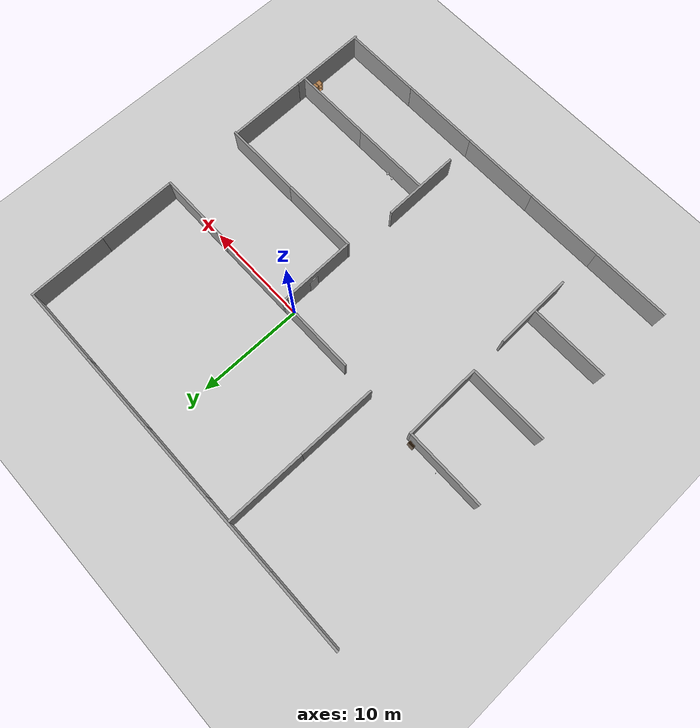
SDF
<sdf version="1.7">
 <world name="default">
  <model name="ground_plane">
   <static>1</static>
   <link name="link">
    <collision name="collision">
     <geometry><plane><normal>0 0 1</normal><size>100 100</size></plane></geometry>
     <surface><friction><ode><mu>100</mu><mu2>50</mu2></ode></friction></surface>
    </collision>
    <visual name="visual">
     <cast_shadows>0</cast_shadows>
     <geometry><plane><normal>0 0 1</normal><size>100 100</size></plane></geometry>
     <material>
      <script><uri>file://media/materials/scripts/gazebo.material</uri><name>Gazebo/Grey</name></script>
     </material>
    </visual>
   </link>
  </model>
  <model name="grey_wall_clone_4_clone">
   <static>1</static>
   <link name="link">
    <pose>0 0 1.4 0 -0 0</pose>
    <collision name="collision"><geometry><box><size>7.5 0.2 2.8</size></box></geometry></collision>
    <visual name="visual">
     <cast_shadows>0</cast_shadows>
     <geometry><box><size>7.5 0.2 2.8</size></box></geometry>
     <material>
      <script>
       <uri>model://grey_wall/materials/scripts</uri>
       <uri>model://grey_wall/materials/textures</uri>
       <name>vrc/grey_wall</name>
      </script>
     </material>
    </visual>
   </link>
   <pose>15.5082 4.30822 0 0 0 -1.5521</pose>
  </model>
  <model name="grey_wall_clone_4_clone_0">
   <static>1</static>
   <link name="link">
    <pose>0 0 1.4 0 -0 0</pose>
    <collision name="collision"><geometry><box><size>7.5 0.2 2.8</size></box></geometry></collision>
    <visual name="visual">
     <cast_shadows>0</cast_shadows>
     <geometry><box><size>7.5 0.2 2.8</size></box></geometry>
     <material>
      <script>
       <uri>model://grey_wall/materials/scripts</uri>
       <uri>model://grey_wall/materials/textures</uri>
       <name>vrc/grey_wall</name>
      </script>
     </material>
    </visual>
   </link>
   <pose>-14.449 -3.19415 0 0 0 -1.5521</pose>
  </model>
  <model name="grey_wall_clone_4_clone_0_clone_0">
   <static>1</static>
   <link name="link">
    <pose>0 0 1.4 0 -0 0</pose>
    <collision name="collision"><geometry><box><size>7.5 0.2 2.8</size></box></geometry></collision>
    <visual name="visual">
     <cast_shadows>0</cast_shadows>
     <geometry><box><size>7.5 0.2 2.8</size></box></geometry>
     <material>
      <script>
       <uri>model://grey_wall/materials/scripts</uri>
       <uri>model://grey_wall/materials/textures</uri>
       <name>vrc/grey_wall</name>
      </script>
     </material>
    </visual>
   </link>
   <pose>0.647385 -3.19007 0 0 0 -1.5521</pose>
  </model>
  <model name="grey_wall_clone_0">
   <static>1</static>
   <link name="link">
    <pose>0 0 1.4 0 -0 0</pose>
    <collision name="collision"><geometry><box><size>7.5 0.2 2.8</size></box></geometry></collision>
    <visual name="visual">
     <cast_shadows>0</cast_shadows>
     <geometry><box><size>7.5 0.2 2.8</size></box></geometry>
     <material>
      <script>
       <uri>model://grey_wall/materials/scripts</uri>
       <uri>model://grey_wall/materials/textures</uri>
       <name>vrc/grey_wall</name>
      </script>
     </material>
    </visual>
   </link>
   <pose>4.42551 0.460567 0 0 -0 0</pose>
  </model>
  <model name="grey_wall_clone_clone_0_clone">
   <static>1</static>
   <link name="link">
    <pose>0 0 1.4 0 -0 0</pose>
    <collision name="collision"><geometry><box><size>7.5 0.2 2.8</size></box></geometry></collision>
    <visual name="visual">
     <cast_shadows>0</cast_shadows>
     <geometry><box><size>7.5 0.2 2.8</size></box></geometry>
     <material>
      <script>
       <uri>model://grey_wall/materials/scripts</uri>
       <uri>model://grey_wall/materials/textures</uri>
       <name>vrc/grey_wall</name>
      </script>
     </material>
    </visual>
   </link>
   <pose>-18.3631 0.451252 0 0 -0 0</pose>
  </model>
  <model name="grey_wall_clone_clone_0_clone_0">
   <static>1</static>
   <link name="link">
    <pose>0 0 1.4 0 -0 0</pose>
    <collision name="collision"><geometry><box><size>7.5 0.2 2.8</size></box></geometry></collision>
    <visual name="visual">
     <cast_shadows>0</cast_shadows>
     <geometry><box><size>7.5 0.2 2.8</size></box></geometry>
     <material>
      <script>
       <uri>model://grey_wall/materials/scripts</uri>
       <uri>model://grey_wall/materials/textures</uri>
       <name>vrc/grey_wall</name>
      </script>
     </material>
    </visual>
   </link>
   <pose>11.9263 0.46112 0 0 -0 0</pose>
  </model>
  <model name="grey_wall_clone_clone_0_clone_1">
   <static>1</static>
   <link name="link">
    <pose>0 0 1.4 0 -0 0</pose>
    <collision name="collision"><geometry><box><size>7.5 0.2 2.8</size></box></geometry></collision>
    <visual name="visual">
     <cast_shadows>0</cast_shadows>
     <geometry><box><size>7.5 0.2 2.8</size></box></geometry>
     <material>
      <script>
       <uri>model://grey_wall/materials/scripts</uri>
       <uri>model://grey_wall/materials/textures</uri>
       <name>vrc/grey_wall</name>
      </script>
     </material>
    </visual>
   </link>
   <pose>-18.215 -6.85848 0 0 -0 0</pose>
  </model>
  <model name="grey_wall_clone_clone_0_clone_0_clone">
   <static>1</static>
   <link name="link">
    <pose>0 0 1.4 0 -0 0</pose>
    <collision name="collision"><geometry><box><size>7.5 0.2 2.8</size></box></geometry></collision>
    <visual name="visual">
     <cast_shadows>0</cast_shadows>
     <geometry><box><size>7.5 0.2 2.8</size></box></geometry>
     <material>
      <script>
       <uri>model://grey_wall/materials/scripts</uri>
       <uri>model://grey_wall/materials/textures</uri>
       <name>vrc/grey_wall</name>
      </script>
     </material>
    </visual>
   </link>
   <pose>4.35977 -7.00596 0 0 -0 0</pose>
  </model>
  <model name="grey_wall_clone_clone_0_clone_0_clone_0">
   <static>1</static>
   <link name="link">
    <pose>0 0 1.4 0 -0 0</pose>
    <collision name="collision"><geometry><box><size>7.5 0.2 2.8</size></box></geometry></collision>
    <visual name="visual">
     <cast_shadows>0</cast_shadows>
     <geometry><box><size>7.5 0.2 2.8</size></box></geometry>
     <material>
      <script>
       <uri>model://grey_wall/materials/scripts</uri>
       <uri>model://grey_wall/materials/textures</uri>
       <name>vrc/grey_wall</name>
      </script>
     </material>
    </visual>
   </link>
   <pose>11.8582 -7.00493 0 0 -0 0</pose>
  </model>
  <model name="grey_wall_clone_clone_0_clone_2">
   <static>1</static>
   <link name="link">
    <pose>0 0 1.4 0 -0 0</pose>
    <collision name="collision"><geometry><box><size>7.5 0.2 2.8</size></box></geometry></collision>
    <visual name="visual">
     <cast_shadows>0</cast_shadows>
     <geometry><box><size>7.5 0.2 2.8</size></box></geometry>
     <material>
      <script>
       <uri>model://grey_wall/materials/scripts</uri>
       <uri>model://grey_wall/materials/textures</uri>
       <name>vrc/grey_wall</name>
      </script>
     </material>
    </visual>
   </link>
   <pose>-18.5394 15.4379 0 0 -0 0</pose>
  </model>
  <model name="grey_wall_clone_clone_0_clone_3">
   <static>1</static>
   <link name="link">
    <pose>0 0 1.4 0 -0 0</pose>
    <collision name="collision"><geometry><box><size>7.5 0.2 2.8</size></box></geometry></collision>
    <visual name="visual">
     <cast_shadows>0</cast_shadows>
     <geometry><box><size>7.5 0.2 2.8</size></box></geometry>
     <material>
      <script>
       <uri>model://grey_wall/materials/scripts</uri>
       <uri>model://grey_wall/materials/textures</uri>
       <name>vrc/grey_wall</name>
      </script>
     </material>
    </visual>
   </link>
   <pose>-11.0493 15.4397 0 0 -0 0</pose>
  </model>
  <model name="grey_wall_clone_clone_0_clone_4">
   <static>1</static>
   <link name="link">
    <pose>0 0 1.4 0 -0 0</pose>
    <collision name="collision"><geometry><box><size>7.5 0.2 2.8</size></box></geometry></collision>
    <visual name="visual">
     <cast_shadows>0</cast_shadows>
     <geometry><box><size>7.5 0.2 2.8</size></box></geometry>
     <material>
      <script>
       <uri>model://grey_wall/materials/scripts</uri>
       <uri>model://grey_wall/materials/textures</uri>
       <name>vrc/grey_wall</name>
      </script>
     </material>
    </visual>
   </link>
   <pose>-3.54868 15.4378 0 0 -0 0</pose>
  </model>
  <model name="grey_wall_clone_clone_0_clone_5">
   <static>1</static>
   <link name="link">
    <pose>0 0 1.4 0 -0 0</pose>
    <collision name="collision"><geometry><box><size>7.5 0.2 2.8</size></box></geometry></collision>
    <visual name="visual">
     <cast_shadows>0</cast_shadows>
     <geometry><box><size>7.5 0.2 2.8</size></box></geometry>
     <material>
      <script>
       <uri>model://grey_wall/materials/scripts</uri>
       <uri>model://grey_wall/materials/textures</uri>
       <name>vrc/grey_wall</name>
      </script>
     </material>
    </visual>
   </link>
   <pose>3.95078 15.4377 0 0 -0 0</pose>
  </model>
  <model name="grey_wall_clone_clone_0_clone_6">
   <static>1</static>
   <link name="link">
    <pose>0 0 1.4 0 -0 0</pose>
    <collision name="collision"><geometry><box><size>7.5 0.2 2.8</size></box></geometry></collision>
    <visual name="visual">
     <cast_shadows>0</cast_shadows>
     <geometry><box><size>7.5 0.2 2.8</size></box></geometry>
     <material>
      <script>
       <uri>model://grey_wall/materials/scripts</uri>
       <uri>model://grey_wall/materials/textures</uri>
       <name>vrc/grey_wall</name>
      </script>
     </material>
    </visual>
   </link>
   <pose>11.452 15.4377 0 0 -0 0</pose>
  </model>
  <model name="grey_wall_clone_4_clone_clone">
   <static>1</static>
   <link name="link">
    <pose>0 0 1.4 0 -0 0</pose>
    <collision name="collision"><geometry><box><size>7.5 0.2 2.8</size></box></geometry></collision>
    <visual name="visual">
     <cast_shadows>0</cast_shadows>
     <geometry><box><size>7.5 0.2 2.8</size></box></geometry>
     <material>
      <script>
       <uri>model://grey_wall/materials/scripts</uri>
       <uri>model://grey_wall/materials/textures</uri>
       <name>vrc/grey_wall</name>
      </script>
     </material>
    </visual>
   </link>
   <pose>15.3664 11.7883 0 0 0 -1.5521</pose>
  </model>
  <model name="grey_wall_clone_4_clone_0_clone_0_clone">
   <static>1</static>
   <link name="link">
    <pose>0 0 1.4 0 -0 0</pose>
    <collision name="collision"><geometry><box><size>7.5 0.2 2.8</size></box></geometry></collision>
    <visual name="visual">
     <cast_shadows>0</cast_shadows>
     <geometry><box><size>7.5 0.2 2.8</size></box></geometry>
     <material>
      <script>
       <uri>model://grey_wall/materials/scripts</uri>
       <uri>model://grey_wall/materials/textures</uri>
       <name>vrc/grey_wall</name>
      </script>
     </material>
    </visual>
   </link>
   <pose>15.4873 -10.8414 0 0 0 -1.5521</pose>
  </model>
  <model name="grey_wall_clone_4_clone_0_clone_0_clone_0">
   <static>1</static>
   <link name="link">
    <pose>0 0 1.4 0 -0 0</pose>
    <collision name="collision"><geometry><box><size>7.5 0.2 2.8</size></box></geometry></collision>
    <visual name="visual">
     <cast_shadows>0</cast_shadows>
     <geometry><box><size>7.5 0.2 2.8</size></box></geometry>
     <material>
      <script>
       <uri>model://grey_wall/materials/scripts</uri>
       <uri>model://grey_wall/materials/textures</uri>
       <name>vrc/grey_wall</name>
      </script>
     </material>
    </visual>
   </link>
   <pose>15.6252 -18.2818 0 0 0 -1.5521</pose>
  </model>
  <model name="grey_wall_clone_clone_0_clone_0_clone_clone">
   <static>1</static>
   <link name="link">
    <pose>0 0 1.4 0 -0 0</pose>
    <collision name="collision"><geometry><box><size>7.5 0.2 2.8</size></box></geometry></collision>
    <visual name="visual">
     <cast_shadows>0</cast_shadows>
     <geometry><box><size>7.5 0.2 2.8</size></box></geometry>
     <material>
      <script>
       <uri>model://grey_wall/materials/scripts</uri>
       <uri>model://grey_wall/materials/textures</uri>
       <name>vrc/grey_wall</name>
      </script>
     </material>
    </visual>
   </link>
   <pose>-18.1396 -21.8252 0 0 -0 0</pose>
  </model>
  <model name="grey_wall_clone_clone_0_clone_0_clone_clone_0">
   <static>1</static>
   <link name="link">
    <pose>0 0 1.4 0 -0 0</pose>
    <collision name="collision"><geometry><box><size>7.5 0.2 2.8</size></box></geometry></collision>
    <visual name="visual">
     <cast_shadows>0</cast_shadows>
     <geometry><box><size>7.5 0.2 2.8</size></box></geometry>
     <material>
      <script>
       <uri>model://grey_wall/materials/scripts</uri>
       <uri>model://grey_wall/materials/textures</uri>
       <name>vrc/grey_wall</name>
      </script>
     </material>
    </visual>
   </link>
   <pose>-10.6534 -21.8234 0 0 -0 0</pose>
  </model>
  <model name="grey_wall_clone_clone_0_clone_0_clone_clone_1">
   <static>1</static>
   <link name="link">
    <pose>0 0 1.4 0 -0 0</pose>
    <collision name="collision"><geometry><box><size>7.5 0.2 2.8</size></box></geometry></collision>
    <visual name="visual">
     <cast_shadows>0</cast_shadows>
     <geometry><box><size>7.5 0.2 2.8</size></box></geometry>
     <material>
      <script>
       <uri>model://grey_wall/materials/scripts</uri>
       <uri>model://grey_wall/materials/textures</uri>
       <name>vrc/grey_wall</name>
      </script>
     </material>
    </visual>
   </link>
   <pose>-3.16614 -21.8218 0 0 -0 0</pose>
  </model>
  <model name="grey_wall_clone_clone_0_clone_0_clone_clone_2">
   <static>1</static>
   <link name="link">
    <pose>0 0 1.4 0 -0 0</pose>
    <collision name="collision"><geometry><box><size>7.5 0.2 2.8</size></box></geometry></collision>
    <visual name="visual">
     <cast_shadows>0</cast_shadows>
     <geometry><box><size>7.5 0.2 2.8</size></box></geometry>
     <material>
      <script>
       <uri>model://grey_wall/materials/scripts</uri>
       <uri>model://grey_wall/materials/textures</uri>
       <name>vrc/grey_wall</name>
      </script>
     </material>
    </visual>
   </link>
   <pose>4.33462 -21.8217 0 0 -0 0</pose>
  </model>
  <model name="grey_wall_clone_clone_0_clone_0_clone_clone_3">
   <static>1</static>
   <link name="link">
    <pose>0 0 1.4 0 -0 0</pose>
    <collision name="collision"><geometry><box><size>7.5 0.2 2.8</size></box></geometry></collision>
    <visual name="visual">
     <cast_shadows>0</cast_shadows>
     <geometry><box><size>7.5 0.2 2.8</size></box></geometry>
     <material>
      <script>
       <uri>model://grey_wall/materials/scripts</uri>
       <uri>model://grey_wall/materials/textures</uri>
       <name>vrc/grey_wall</name>
      </script>
     </material>
    </visual>
   </link>
   <pose>11.8265 -21.8133 0 0 -0 0</pose>
  </model>
  <model name="door">
   <link name="link_0">
    <visual name="visual">
     <pose>0 0 1 0 -0 0</pose>
     <geometry><box><size>0.9 0.15 2</size></box></geometry>
     <material>
      <script>
       <uri>model://door/materials/scripts</uri>
       <uri>model://door/materials/textures</uri>
       <name>door</name>
      </script>
     </material>
    </visual>
    <collision name="collision">
     <pose>0 0 1 0 -0 0</pose>
     <geometry><box><size>0.9 0.15 2</size></box></geometry>
    </collision>
   </link>
   <static>1</static>
   <pose>0.558432 -2.83222 0 0 0 -1.54638</pose>
  </model>
  <model name="cabinet">
   <static>1</static>
   <link name="cabinet_bottom_plate">
    <inertial>
     <pose>0 0 -1 0 -0 0</pose>
     <inertia><ixx>2.05</ixx><ixy>0</ixy><ixz>0</ixz><iyy>2.05</iyy><iyz>0</iyz><izz>2.05</izz></inertia>
     <mass>25</mass>
    </inertial>
    <collision name="cabinet_bottom_plate_geom">
     <pose>0 0 0.01 0 -0 0</pose>
     <geometry><box><size>0.45 0.45 0.02</size></box></geometry>
    </collision>
    <visual name="cabinet_bottom_plate_geom_visual">
     <pose>0 0 0.01 0 -0 0</pose>
     <geometry><box><size>0.45 0.45 0.02</size></box></geometry>
     <material>
      <script><uri>file://media/materials/scripts/gazebo.material</uri><name>Gazebo/Wood</name></script>
     </material>
    </visual>
    <collision name="cabinet_bottom_plate_geom_cabinet_back_plate">
     <pose>0.235 0 0.51 0 -0 0</pose>
     <geometry><box><size>0.02 0.45 1.02</size></box></geometry>
    </collision>
    <visual name="cabinet_bottom_plate_geom_cabinet_back_plate_visual">
     <pose>0.235 0 0.51 0 -0 0</pose>
     <geometry><box><size>0.02 0.45 1.02</size></box></geometry>
     <material>
      <script><uri>file://media/materials/scripts/gazebo.material</uri><name>Gazebo/Wood</name></script>
     </material>
    </visual>
    <collision name="cabinet_bottom_plate_geom_cabinet_left_plate">
     <pose>0 0.235 0.51 0 -0 0</pose>
     <geometry><box><size>0.45 0.02 1.02</size></box></geometry>
    </collision>
    <visual name="cabinet_bottom_plate_geom_cabinet_left_plate_visual">
     <pose>0 0.235 0.51 0 -0 0</pose>
     <geometry><box><size>0.45 0.02 1.02</size></box></geometry>
     <material>
      <script><uri>file://media/materials/scripts/gazebo.material</uri><name>Gazebo/Wood</name></script>
     </material>
    </visual>
    <collision name="cabinet_bottom_plate_geom_cabinet_middle_plate">
     <pose>0 0 0.51 0 -0 0</pose>
     <geometry><box><size>0.45 0.45 0.02</size></box></geometry>
    </collision>
    <visual name="cabinet_bottom_plate_geom_cabinet_middle_plate_visual">
     <pose>0 0 0.51 0 -0 0</pose>
     <geometry><box><size>0.45 0.45 0.02</size></box></geometry>
     <material>
      <script><uri>file://media/materials/scripts/gazebo.material</uri><name>Gazebo/Wood</name></script>
     </material>
    </visual>
    <collision name="cabinet_bottom_plate_geom_cabinet_right_plate">
     <pose>0 -0.235 0.51 0 -0 0</pose>
     <geometry><box><size>0.45 0.02 1.02</size></box></geometry>
    </collision>
    <visual name="cabinet_bottom_plate_geom_cabinet_right_plate_visual">
     <pose>0 -0.235 0.51 0 -0 0</pose>
     <geometry><box><size>0.45 0.02 1.02</size></box></geometry>
     <material>
      <script><uri>file://media/materials/scripts/gazebo.material</uri><name>Gazebo/Wood</name></script>
     </material>
    </visual>
    <collision name="cabinet_bottom_plate_geom_cabinet_top_plate">
     <pose>0 0 1.01 0 -0 0</pose>
     <geometry><box><size>0.45 0.45 0.02</size></box></geometry>
    </collision>
    <visual name="cabinet_bottom_plate_geom_cabinet_top_plate_visual">
     <pose>0 0 1.01 0 -0 0</pose>
     <geometry><box><size>0.45 0.45 0.02</size></box></geometry>
     <material>
      <script><uri>file://media/materials/scripts/gazebo.material</uri><name>Gazebo/Wood</name></script>
     </material>
    </visual>
   </link>
   <pose>15.2039 -16.2791 0 0 -0 0</pose>
  </model>
  <model name="cabinet_clone">
   <static>1</static>
   <link name="cabinet_bottom_plate">
    <inertial>
     <pose>0 0 -1 0 -0 0</pose>
     <inertia><ixx>2.05</ixx><ixy>0</ixy><ixz>0</ixz><iyy>2.05</iyy><iyz>0</iyz><izz>2.05</izz></inertia>
     <mass>25</mass>
    </inertial>
    <collision name="cabinet_bottom_plate_geom">
     <pose>0 0 0.01 0 -0 0</pose>
     <geometry><box><size>0.45 0.45 0.02</size></box></geometry>
    </collision>
    <visual name="cabinet_bottom_plate_geom_visual">
     <pose>0 0 0.01 0 -0 0</pose>
     <geometry><box><size>0.45 0.45 0.02</size></box></geometry>
     <material>
      <script><uri>file://media/materials/scripts/gazebo.material</uri><name>Gazebo/Wood</name></script>
     </material>
    </visual>
    <collision name="cabinet_bottom_plate_geom_cabinet_back_plate">
     <pose>0.235 0 0.51 0 -0 0</pose>
     <geometry><box><size>0.02 0.45 1.02</size></box></geometry>
    </collision>
    <visual name="cabinet_bottom_plate_geom_cabinet_back_plate_visual">
     <pose>0.235 0 0.51 0 -0 0</pose>
     <geometry><box><size>0.02 0.45 1.02</size></box></geometry>
     <material>
      <script><uri>file://media/materials/scripts/gazebo.material</uri><name>Gazebo/Wood</name></script>
     </material>
    </visual>
    <collision name="cabinet_bottom_plate_geom_cabinet_left_plate">
     <pose>0 0.235 0.51 0 -0 0</pose>
     <geometry><box><size>0.45 0.02 1.02</size></box></geometry>
    </collision>
    <visual name="cabinet_bottom_plate_geom_cabinet_left_plate_visual">
     <pose>0 0.235 0.51 0 -0 0</pose>
     <geometry><box><size>0.45 0.02 1.02</size></box></geometry>
     <material>
      <script><uri>file://media/materials/scripts/gazebo.material</uri><name>Gazebo/Wood</name></script>
     </material>
    </visual>
    <collision name="cabinet_bottom_plate_geom_cabinet_middle_plate">
     <pose>0 0 0.51 0 -0 0</pose>
     <geometry><box><size>0.45 0.45 0.02</size></box></geometry>
    </collision>
    <visual name="cabinet_bottom_plate_geom_cabinet_middle_plate_visual">
     <pose>0 0 0.51 0 -0 0</pose>
     <geometry><box><size>0.45 0.45 0.02</size></box></geometry>
     <material>
      <script><uri>file://media/materials/scripts/gazebo.material</uri><name>Gazebo/Wood</name></script>
     </material>
    </visual>
    <collision name="cabinet_bottom_plate_geom_cabinet_right_plate">
     <pose>0 -0.235 0.51 0 -0 0</pose>
     <geometry><box><size>0.45 0.02 1.02</size></box></geometry>
    </collision>
    <visual name="cabinet_bottom_plate_geom_cabinet_right_plate_visual">
     <pose>0 -0.235 0.51 0 -0 0</pose>
     <geometry><box><size>0.45 0.02 1.02</size></box></geometry>
     <material>
      <script><uri>file://media/materials/scripts/gazebo.material</uri><name>Gazebo/Wood</name></script>
     </material>
    </visual>
    <collision name="cabinet_bottom_plate_geom_cabinet_top_plate">
     <pose>0 0 1.01 0 -0 0</pose>
     <geometry><box><size>0.45 0.45 0.02</size></box></geometry>
    </collision>
    <visual name="cabinet_bottom_plate_geom_cabinet_top_plate_visual">
     <pose>0 0 1.01 0 -0 0</pose>
     <geometry><box><size>0.45 0.45 0.02</size></box></geometry>
     <material>
      <script><uri>file://media/materials/scripts/gazebo.material</uri><name>Gazebo/Wood</name></script>
     </material>
    </visual>
   </link>
   <pose>15.1941 -16.7787 0 0 -0 0</pose>
  </model>
  <model name="book_1">
   <link name="cover">
    <pose>0 -0.000108 0.015405 0 -0 0</pose>
    <visual name="visual">
     <geometry><box><size>0.245 0.16 0.03</size></box></geometry>
     <material>
      <script>
       <uri>model://book_1/materials/scripts</uri>
       <uri>model://book_1/materials/textures</uri>
       <name>book_1</name>
      </script>
     </material>
    </visual>
    <collision name="collision"><geometry><box><size>0.245 0.16 0.03</size></box></geometry></collision>
   </link>
   <link name="page">
    <pose>0 0.000608 0.015405 0 -0 0</pose>
    <visual name="visual">
     <geometry><box><size>0.24502 0.15862 0.028</size></box></geometry>
     <material>
      <lighting>1</lighting>
      <ambient>1 1 1 1</ambient>
      <diffuse>1 1 1 1</diffuse>
      <specular>0.01 0.01 0.01 1</specular>
      <emissive>0 0 0 1</emissive>
      <shader type="vertex"><normal_map>__default__</normal_map></shader>
     </material>
    </visual>
    <collision name="collision"><geometry><box><size>0.245 0.16 0.03</size></box></geometry></collision>
   </link>
   <static>1</static>
   <pose>3.3312 -14.8779 0.800647 0 -0 1.93686</pose>
  </model>
  <model name="book_10">
   <link name="cover">
    <pose>0 -0.000108 0.015405 0 -0 0</pose>
    <visual name="visual">
     <geometry><box><size>0.245 0.16 0.03</size></box></geometry>
     <material>
      <script>
       <uri>model://book_10/materials/scripts</uri>
       <uri>model://book_10/materials/textures</uri>
       <name>book_10</name>
      </script>
     </material>
    </visual>
    <collision name="collision"><geometry><box><size>0.245 0.16 0.03</size></box></geometry></collision>
   </link>
   <link name="page">
    <pose>0 0.000608 0.015405 0 -0 0</pose>
    <visual name="visual">
     <geometry><box><size>0.24502 0.15862 0.028</size></box></geometry>
     <material>
      <lighting>1</lighting>
      <ambient>1 1 1 1</ambient>
      <diffuse>1 1 1 1</diffuse>
      <specular>0.01 0.01 0.01 1</specular>
      <emissive>0 0 0 1</emissive>
      <shader type="vertex"><normal_map>__default__</normal_map></shader>
     </material>
    </visual>
    <collision name="collision"><geometry><box><size>0.245 0.16 0.03</size></box></geometry></collision>
   </link>
   <static>1</static>
   <pose>3.91921 -14.9443 0.826943 0 0 -1.74766</pose>
  </model>
  <model name="grey_wall_clone_clone_0_clone_1_clone">
   <static>1</static>
   <link name="link">
    <pose>0 0 1.4 0 -0 0</pose>
    <collision name="collision"><geometry><box><size>7.5 0.2 2.8</size></box></geometry></collision>
    <visual name="visual">
     <cast_shadows>0</cast_shadows>
     <geometry><box><size>7.5 0.2 2.8</size></box></geometry>
     <material>
      <script>
       <uri>model://grey_wall/materials/scripts</uri>
       <uri>model://grey_wall/materials/textures</uri>
       <name>vrc/grey_wall</name>
      </script>
     </material>
    </visual>
   </link>
   <pose>-18.0733 -14.2546 0 0 -0 0</pose>
  </model>
  <model name="grey_wall_clone_4_clone_0_clone_3">
   <static>1</static>
   <link name="link">
    <pose>0 0 1.4 0 -0 0</pose>
    <collision name="collision"><geometry><box><size>7.5 0.2 2.8</size></box></geometry></collision>
    <visual name="visual">
     <cast_shadows>0</cast_shadows>
     <geometry><box><size>7.5 0.2 2.8</size></box></geometry>
     <material>
      <script>
       <uri>model://grey_wall/materials/scripts</uri>
       <uri>model://grey_wall/materials/textures</uri>
       <name>vrc/grey_wall</name>
      </script>
     </material>
    </visual>
   </link>
   <pose>-14.2282 -14.1275 0 0 0 -1.5521</pose>
  </model>
  <model name="grey_wall_clone_clone_0_clone_0_clone_0_clone">
   <static>1</static>
   <link name="link">
    <pose>0 0 1.4 0 -0 0</pose>
    <collision name="collision"><geometry><box><size>7.5 0.2 2.8</size></box></geometry></collision>
    <visual name="visual">
     <cast_shadows>0</cast_shadows>
     <geometry><box><size>7.5 0.2 2.8</size></box></geometry>
     <material>
      <script>
       <uri>model://grey_wall/materials/scripts</uri>
       <uri>model://grey_wall/materials/textures</uri>
       <name>vrc/grey_wall</name>
      </script>
     </material>
    </visual>
   </link>
   <pose>11.7265 -15.378 0 0 -0 0</pose>
  </model>
  <model name="grey_wall_clone_4_clone_0_clone_0_clone_clone">
   <static>1</static>
   <link name="link">
    <pose>0 0 1.4 0 -0 0</pose>
    <collision name="collision"><geometry><box><size>7.5 0.2 2.8</size></box></geometry></collision>
    <visual name="visual">
     <cast_shadows>0</cast_shadows>
     <geometry><box><size>7.5 0.2 2.8</size></box></geometry>
     <material>
      <script>
       <uri>model://grey_wall/materials/scripts</uri>
       <uri>model://grey_wall/materials/textures</uri>
       <name>vrc/grey_wall</name>
      </script>
     </material>
    </visual>
   </link>
   <pose>0.380644 -15.4585 0 0 0 -1.5521</pose>
  </model>
  <model name="coffee_box">
   <link name="link_0">
    <visual name="visual">
     <pose>0 0 0.06 0 -0 0</pose>
     <geometry><cylinder><radius>0.04</radius><length>0.12</length></cylinder></geometry>
     <material>
      <script>
       <uri>model://coffee_box/materials/scripts</uri>
       <uri>model://coffee_box/materials/textures</uri>
       <name>coffee_pat</name>
      </script>
     </material>
    </visual>
    <collision name="collision">
     <geometry><cylinder><radius>0.04</radius><length>0.12</length></cylinder></geometry>
    </collision>
   </link>
   <static>1</static>
   <pose>-18.0252 0.921696 0.919903 0 -0 0</pose>
  </model>
  <model name="6_Cube_StorageE_clone">
   <link name="Wall_0">
    <pose>0 0 0.01 0 -0 0</pose>
    <inertial>
     <mass>1.6201</mass>
     <inertia><ixx>0.0119</ixx><iyy>0.0631</iyy><izz>0.0513</izz><ixy>0</ixy><ixz>0</ixz><iyz>0</iyz></inertia>
    </inertial>
    <collision name="Wall_0_Collision"><geometry><box><size>0.616 0.296 0.02</size></box></geometry></collision>
    <visual name="Wall_0_Visual">
     <geometry><box><size>0.616 0.296 0.02</size></box></geometry>
     <material>
      <script><uri>file://media/materials/scripts/gazebo.material</uri><name>Gazebo/Grey</name></script>
      <ambient>0.105882 0.0509804 0 1</ambient>
     </material>
    </visual>
   </link>
   <joint name="0_2" type="fixed">
    <pose>-0.308 0 0 0 -0 0</pose>
    <parent>Wall_2</parent>
    <child>Wall_0</child>
    <axis><xyz>1 0 0</xyz><limit><lower>-1e+16</lower><upper>1e+16</upper></limit></axis>
   </joint>
   <joint name="0_12" type="fixed">
    <parent>Wall_12</parent>
    <child>Wall_0</child>
    <axis><xyz>0 0 1</xyz><limit><lower>-1e+16</lower><upper>1e+16</upper></limit></axis>
   </joint>
   <joint name="0_4" type="fixed">
    <pose>0.308 0 0 0 -0 0</pose>
    <parent>Wall_4</parent>
    <child>Wall_0</child>
    <axis><xyz>1 0 0</xyz><limit><lower>-1e+16</lower><upper>1e+16</upper></limit></axis>
   </joint>
   <link name="Wall_10">
    <pose>0 0 0.61 0 -0 0</pose>
    <inertial>
     <mass>1.6201</mass>
     <inertia><ixx>0.0119</ixx><iyy>0.0631</iyy><izz>0.0513</izz><ixy>0</ixy><ixz>0</ixz><iyz>0</iyz></inertia>
    </inertial>
    <collision name="Wall_10_Collision"><geometry><box><size>0.616 0.296 0.02</size></box></geometry></collision>
    <visual name="Wall_10_Visual">
     <geometry><box><size>0.616 0.296 0.02</size></box></geometry>
     <material>
      <script><uri>file://media/materials/scripts/gazebo.material</uri><name>Gazebo/Grey</name></script>
      <ambient>0.105882 0.0509804 0 1</ambient>
     </material>
    </visual>
   </link>
   <joint name="10_2" type="fixed">
    <pose>-0.308 0 0 0 -0 0</pose>
    <parent>Wall_2</parent>
    <child>Wall_10</child>
    <axis><xyz>1 0 0</xyz><limit><lower>-1e+16</lower><upper>1e+16</upper></limit></axis>
   </joint>
   <joint name="10_12" type="fixed">
    <parent>Wall_12</parent>
    <child>Wall_10</child>
    <axis><xyz>0 0 1</xyz><limit><lower>-1e+16</lower><upper>1e+16</upper></limit></axis>
   </joint>
   <joint name="10_4" type="fixed">
    <pose>0.308 0 0 0 -0 0</pose>
    <parent>Wall_4</parent>
    <child>Wall_10</child>
    <axis><xyz>1 0 0</xyz><limit><lower>-1e+16</lower><upper>1e+16</upper></limit></axis>
   </joint>
   <link name="Wall_12">
    <pose>0 0 0.4575 0 -0 0</pose>
    <inertial>
     <mass>2.4065</mass>
     <inertia><ixx>0.0177</ixx><iyy>0.1855</iyy><izz>0.168</izz><ixy>0</ixy><ixz>0</ixz><iyz>0</iyz></inertia>
    </inertial>
    <collision name="Wall_12_Collision"><geometry><box><size>0.02 0.296 0.915</size></box></geometry></collision>
    <visual name="Wall_12_Visual">
     <geometry><box><size>0.02 0.296 0.915</size></box></geometry>
     <material>
      <script><uri>file://media/materials/scripts/gazebo.material</uri><name>Gazebo/Grey</name></script>
      <ambient>0.105882 0.0509804 0 1</ambient>
     </material>
    </visual>
   </link>
   <link name="Wall_2">
    <pose>-0.298 0 0.4575 0 -0 0</pose>
    <inertial>
     <mass>2.4065</mass>
     <inertia><ixx>0.0177</ixx><iyy>0.1855</iyy><izz>0.168</izz><ixy>0</ixy><ixz>0</ixz><iyz>0</iyz></inertia>
    </inertial>
    <collision name="Wall_2_Collision"><geometry><box><size>0.02 0.296 0.915</size></box></geometry></collision>
    <visual name="Wall_2_Visual">
     <geometry><box><size>0.02 0.296 0.915</size></box></geometry>
     <material>
      <script><uri>file://media/materials/scripts/gazebo.material</uri><name>Gazebo/Grey</name></script>
      <ambient>0.105882 0.0509804 0 1</ambient>
     </material>
    </visual>
   </link>
   <link name="Wall_4">
    <pose>0.298 0 0.4575 0 -0 0</pose>
    <inertial>
     <mass>2.4065</mass>
     <inertia><ixx>0.0177</ixx><iyy>0.1855</iyy><izz>0.168</izz><ixy>0</ixy><ixz>0</ixz><iyz>0</iyz></inertia>
    </inertial>
    <collision name="Wall_4_Collision"><geometry><box><size>0.02 0.296 0.915</size></box></geometry></collision>
    <visual name="Wall_4_Visual">
     <geometry><box><size>0.02 0.296 0.915</size></box></geometry>
     <material>
      <script><uri>file://media/materials/scripts/gazebo.material</uri><name>Gazebo/Grey</name></script>
      <ambient>0.105882 0.0509804 0 1</ambient>
     </material>
    </visual>
   </link>
   <link name="Wall_6">
    <pose>0 0 0.905 0 -0 0</pose>
    <inertial>
     <mass>1.6201</mass>
     <inertia><ixx>0.0119</ixx><iyy>0.0631</iyy><izz>0.0513</izz><ixy>0</ixy><ixz>0</ixz><iyz>0</iyz></inertia>
    </inertial>
    <collision name="Wall_6_Collision"><geometry><box><size>0.616 0.296 0.02</size></box></geometry></collision>
    <visual name="Wall_6_Visual">
     <geometry><box><size>0.616 0.296 0.02</size></box></geometry>
     <material>
      <script><uri>file://media/materials/scripts/gazebo.material</uri><name>Gazebo/Grey</name></script>
      <ambient>0.105882 0.0509804 0 1</ambient>
     </material>
    </visual>
   </link>
   <joint name="6_2" type="fixed">
    <pose>-0.308 0 0 0 -0 0</pose>
    <parent>Wall_2</parent>
    <child>Wall_6</child>
    <axis><xyz>2 0 0</xyz><limit><lower>-1e+16</lower><upper>1e+16</upper></limit></axis>
   </joint>
   <joint name="6_12" type="fixed">
    <parent>Wall_12</parent>
    <child>Wall_6</child>
    <axis><xyz>0 0 1</xyz><limit><lower>-1e+16</lower><upper>1e+16</upper></limit></axis>
   </joint>
   <joint name="6_4" type="fixed">
    <pose>0.308 0 0 0 -0 0</pose>
    <parent>Wall_4</parent>
    <child>Wall_6</child>
    <axis><xyz>1 0 0</xyz><limit><lower>-1e+16</lower><upper>1e+16</upper></limit></axis>
   </joint>
   <link name="Wall_8">
    <pose>0 0 0.305 0 -0 0</pose>
    <inertial>
     <mass>1.6201</mass>
     <inertia><ixx>0.0119</ixx><iyy>0.0631</iyy><izz>0.0513</izz><ixy>0</ixy><ixz>0</ixz><iyz>0</iyz></inertia>
    </inertial>
    <collision name="Wall_8_Collision"><geometry><box><size>0.616 0.296 0.02</size></box></geometry></collision>
    <visual name="Wall_8_Visual">
     <geometry><box><size>0.616 0.296 0.02</size></box></geometry>
     <material>
      <script><uri>file://media/materials/scripts/gazebo.material</uri><name>Gazebo/Grey</name></script>
      <ambient>0.105882 0.0509804 0 1</ambient>
     </material>
    </visual>
   </link>
   <joint name="8_2" type="fixed">
    <pose>-0.308 0 0 0 -0 0</pose>
    <parent>Wall_2</parent>
    <child>Wall_8</child>
    <axis><xyz>1 0 0</xyz><limit><lower>-1e+16</lower><upper>1e+16</upper></limit></axis>
   </joint>
   <joint name="8_12" type="fixed">
    <parent>Wall_12</parent>
    <child>Wall_8</child>
    <axis><xyz>0 0 1</xyz><limit><lower>-1e+16</lower><upper>1e+16</upper></limit></axis>
   </joint>
   <joint name="8_4" type="fixed">
    <pose>0.308 0 0 0 -0 0</pose>
    <parent>Wall_4</parent>
    <child>Wall_8</child>
    <axis><xyz>1 0 0</xyz><limit><lower>-1e+16</lower><upper>1e+16</upper></limit></axis>
   </joint>
   <static>1</static>
   <pose>-15.0828 0.714605 0 0 -0 0</pose>
  </model>
  <model name="grey_wall_clone_4_clone_0_clone_clone_clone">
   <static>1</static>
   <link name="link">
    <pose>0 0 1.4 0 -0 0</pose>
    <collision name="collision"><geometry><box><size>7.5 0.2 2.8</size></box></geometry></collision>
    <visual name="visual">
     <cast_shadows>0</cast_shadows>
     <geometry><box><size>7.5 0.2 2.8</size></box></geometry>
     <material>
      <script>
       <uri>model://grey_wall/materials/scripts</uri>
       <uri>model://grey_wall/materials/textures</uri>
       <name>vrc/grey_wall</name>
      </script>
     </material>
    </visual>
   </link>
   <pose>-9.89551 11.6115 0 0 0 -1.57292</pose>
  </model>
  <model name="grey_wall_clone_4_clone_0_clone_clone_clone_0">
   <static>1</static>
   <link name="link">
    <pose>0 0 1.4 0 -0 0</pose>
    <collision name="collision"><geometry><box><size>7.5 0.2 2.8</size></box></geometry></collision>
    <visual name="visual">
     <cast_shadows>0</cast_shadows>
     <geometry><box><size>7.5 0.2 2.8</size></box></geometry>
     <material>
      <script>
       <uri>model://grey_wall/materials/scripts</uri>
       <uri>model://grey_wall/materials/textures</uri>
       <name>vrc/grey_wall</name>
      </script>
     </material>
    </visual>
   </link>
   <pose>-9.91191 4.11265 0 0 0 -1.57292</pose>
  </model>
  <model name="grey_wall_clone_0_clone">
   <static>1</static>
   <link name="link">
    <pose>0 0 1.4 0 -0 0</pose>
    <collision name="collision"><geometry><box><size>7.5 0.2 2.8</size></box></geometry></collision>
    <visual name="visual">
     <cast_shadows>0</cast_shadows>
     <geometry><box><size>7.5 0.2 2.8</size></box></geometry>
     <material>
      <script>
       <uri>model://grey_wall/materials/scripts</uri>
       <uri>model://grey_wall/materials/textures</uri>
       <name>vrc/grey_wall</name>
      </script>
     </material>
    </visual>
   </link>
   <pose>-3.2604 0.454009 0 0 -0 0</pose>
  </model>
  <model name="grey_wall_clone_clone_0_clone_0_clone_0_clone_clone">
   <static>1</static>
   <link name="link">
    <pose>0 0 1.4 0 -0 0</pose>
    <collision name="collision"><geometry><box><size>7.5 0.2 2.8</size></box></geometry></collision>
    <visual name="visual">
     <cast_shadows>0</cast_shadows>
     <geometry><box><size>7.5 0.2 2.8</size></box></geometry>
     <material>
      <script>
       <uri>model://grey_wall/materials/scripts</uri>
       <uri>model://grey_wall/materials/textures</uri>
       <name>vrc/grey_wall</name>
      </script>
     </material>
    </visual>
   </link>
   <pose>4.22845 -15.3772 0 0 -0 0</pose>
  </model>
  <model name="wood_block_10_2_1cm">
   <link name="link">
    <pose>0 0 0.005 0 -0 0</pose>
    <inertial>
     <mass>0.0125</mass>
     <inertia>
      <ixx>7.55208e-07</ixx>
      <ixy>0</ixy>
      <ixz>0</ixz>
      <iyy>1.05208e-05</iyy>
      <iyz>0</iyz>
      <izz>1.10677e-05</izz>
     </inertia>
    </inertial>
    <collision name="collision">
     <geometry><box><size>0.1 0.025 0.01</size></box></geometry>
     <surface>
      <contact>
       <poissons_ratio>0.347</poissons_ratio>
       <elastic_modulus>8.8e+09</elastic_modulus>
       <ode><kp>100000</kp><kd>1</kd><max_vel>1</max_vel><min_depth>0.001</min_depth></ode>
      </contact>
      <friction>
       <torsional>
        <coefficient>1</coefficient>
        <use_patch_radius>0</use_patch_radius>
        <surface_radius>0.05</surface_radius>
       </torsional>
      </friction>
     </surface>
    </collision>
    <visual name="visual">
     <geometry><box><size>0.1 0.025 0.01</size></box></geometry>
     <material>
      <script><uri>file://media/materials/scripts/gazebo.material</uri><name>Gazebo/Wood</name></script>
     </material>
    </visual>
   </link>
   <pose>-6.56434 7.99161 -0.001 0 -0 0</pose>
  </model>
 </world>
</sdf>
